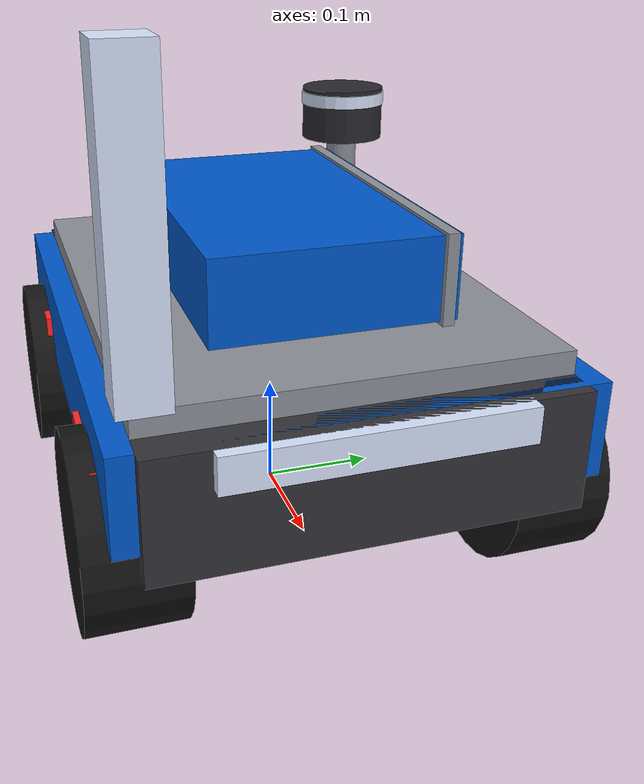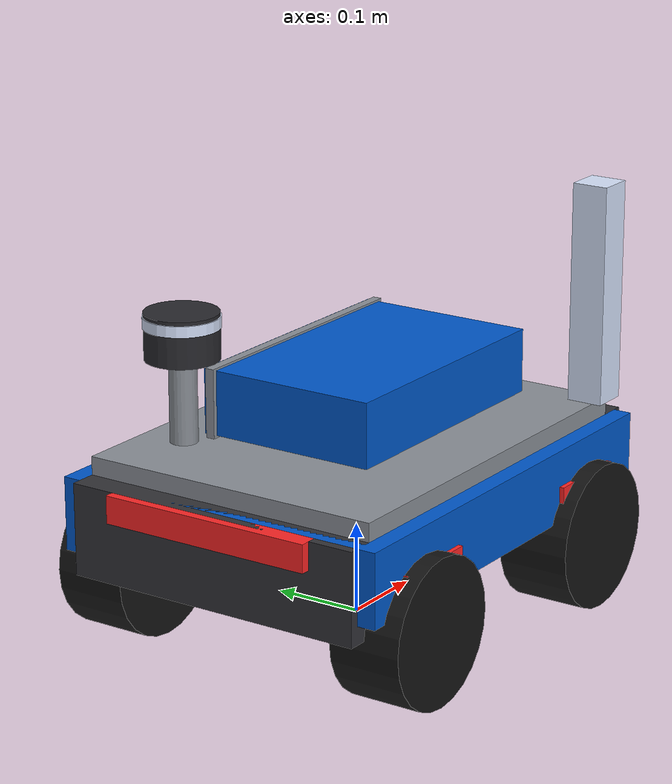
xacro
<?xml version="1.0"?>
<robot name="agv0" xmlns:xacro="http://ros.org/wiki/xacro">

    <!-- 1. 使用相对路径引入 -->
    <xacro:include filename="agv_core.urdf.xacro"/>

    <!-- 2. 定义默认参数 -->
    <xacro:arg name="robot_name" default="agv0"/>
    <xacro:arg name="color" default="0 0.35 0.8 1.0"/>
    <xacro:arg name="id" default="0"/>
    <xacro:arg name="with_cargo" default="true"/>
    <xacro:arg name="gazebo_mat" default="Gazebo/Blue"/>

    <!-- 3. 调用宏，并显式把参数传进去 -->
    <xacro:agv_core
        robot_name="$(arg robot_name)"
        color="$(arg color)"
        id="$(arg id)"
        with_cargo="$(arg with_cargo)"
        gazebo_mat="$(arg gazebo_mat)"/>

</robot>

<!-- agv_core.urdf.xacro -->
<robot xmlns:xacro="http://ros.org/wiki/xacro" name="agv_core">

  <xacro:macro name="agv_core" params="robot_name color id with_cargo:=true gazebo_mat:=Gazebo/Blue">

    <!-- ================= 材质宏（内联到每个 visual） ================= -->
    <xacro:macro name="body_mat" params="robot_name robot_color">
      <material name="${robot_name}_body">
        <color rgba="${robot_color}"/>
      </material>
    </xacro:macro>
    <xacro:macro name="wheel_mat_block">
      <material name="wheel_mat">
        <color rgba="0.08 0.08 0.08 1.0"/>
      </material>
    </xacro:macro>
    <xacro:macro name="platform_mat_block">
      <material name="platform_mat">
        <color rgba="0.55 0.57 0.6 1.0"/>
      </material>
    </xacro:macro>
    <xacro:macro name="lidar_mat_block">
      <material name="lidar_mat">
        <color rgba="0.16 0.16 0.18 1.0"/>
      </material>
    </xacro:macro>
    <xacro:macro name="led_front_mat_block">
      <material name="led_front_mat">
        <color rgba="0.85 0.9 1.0 1.0"/>
      </material>
    </xacro:macro>
    <xacro:macro name="led_rear_mat_block">
      <material name="led_rear_mat">
        <color rgba="1.0 0.15 0.15 1.0"/>
      </material>
    </xacro:macro>
    <xacro:macro name="bumper_mat_block">
      <material name="bumper_mat">
        <color rgba="0.2 0.2 0.22 1.0"/>
      </material>
    </xacro:macro>

    <!-- ================= 底盘（车体） ================= -->
    <link name="base_link_${id}">
      <!-- 车体主体 -->
      <visual>
        <geometry><box size="0.5 0.38 0.08"/></geometry>
        <origin xyz="0 0 0.15"/>
        <xacro:body_mat robot_name="${robot_name}" robot_color="${color}"/>
      </visual>
      <!-- 前保险杠 -->
      <visual>
        <geometry><box size="0.04 0.34 0.1"/></geometry>
        <origin xyz="0.24 0 0.14"/>
        <xacro:bumper_mat_block/>
      </visual>
      <!-- 后保险杠 -->
      <visual>
        <geometry><box size="0.04 0.34 0.1"/></geometry>
        <origin xyz="-0.24 0 0.14"/>
        <xacro:bumper_mat_block/>
      </visual>
      <!-- 前方白色状态灯 -->
      <visual>
        <geometry><box size="0.02 0.24 0.03"/></geometry>
        <origin xyz="0.26 0 0.175"/>
        <xacro:led_front_mat_block/>
      </visual>
      <!-- 后方红色警示灯 -->
      <visual>
        <geometry><box size="0.02 0.24 0.03"/></geometry>
        <origin xyz="-0.26 0 0.175"/>
        <xacro:led_rear_mat_block/>
      </visual>
      <!-- 两侧黄色反光条 -->
      <visual>
        <geometry><box size="0.1 0.01 0.04"/></geometry>
        <origin xyz="0.15 0.19 0.13"/>
        <xacro:led_rear_mat_block/>
      </visual>
      <visual>
        <geometry><box size="0.1 0.01 0.04"/></geometry>
        <origin xyz="-0.15 0.19 0.13"/>
        <xacro:led_rear_mat_block/>
      </visual>
      <visual>
        <geometry><box size="0.1 0.01 0.04"/></geometry>
        <origin xyz="0.15 -0.19 0.13"/>
        <xacro:led_rear_mat_block/>
      </visual>
      <visual>
        <geometry><box size="0.1 0.01 0.04"/></geometry>
        <origin xyz="-0.15 -0.19 0.13"/>
        <xacro:led_rear_mat_block/>
      </visual>
      <!-- 底盘碰撞体 + 惯量：2026-09 修复。此前一次“注释立杆”误把车体的
           collision/inertial 一并注释掉，导致底盘无碰撞体积（车可互相穿模）、
           base_link 无惯性（URDF 解析报错风险），此处恢复。 -->
      <collision>
        <geometry><box size="0.5 0.38 0.08"/></geometry>
        <origin xyz="0 0 0.15"/>
      </collision>
      <inertial>
        <mass value="20.0"/>
        <inertia ixx="0.2513" ixy="0.0" ixz="0.0" iyy="0.4273" iyz="0.0" izz="0.6573"/>
      </inertial>

    </link>

    <link name="front_left_steer_link_${id}">
      <inertial>
        <mass value="0.5"/>
        <inertia ixx="0.01" ixy="0.0" ixz="0.0" iyy="0.01" iyz="0.0" izz="0.01"/>
      </inertial>
    </link>
    <joint name="front_left_steer_joint_${id}" type="revolute">
      <parent link="base_link_${id}"/><child link="front_left_steer_link_${id}"/>
      <origin xyz="0.16 0.17 0.08"/>
      <axis xyz="0 0 1"/>
      <limit lower="-0.7" upper="0.7" effort="100" velocity="10"/>
    </joint>
    <link name="left_wheel_front_${id}">
      <visual>
        <origin xyz="0.0 0.0 0.0" rpy="0 1.57 1.57"/>
        <geometry><cylinder radius="0.08" length="0.08"/></geometry>
        <xacro:wheel_mat_block/>
      </visual>
      <collision>
        <origin xyz="0.0 0.0 0.0" rpy="0 1.57 1.57"/>
        <geometry><cylinder radius="0.08" length="0.08"/></geometry>
      </collision>
      <inertial>
        <mass value="0.8"/>
        <inertia ixx="0.00200" ixy="0.0" ixz="0.0" iyy="0.00200" iyz="0.0" izz="0.00320"/>
      </inertial>
    </link>
    <joint name="left_wheel_front_joint_${id}" type="continuous">
      <parent link="front_left_steer_link_${id}"/><child link="left_wheel_front_${id}"/>
      <origin xyz="0 0 0"/>
      <axis xyz="0 1 0"/>
      <dynamics damping="0.01"/>
      <limit effort="100" velocity="20"/>
    </joint>

    <link name="front_right_steer_link_${id}">
      <inertial>
        <mass value="0.5"/>
        <inertia ixx="0.01" ixy="0.0" ixz="0.0" iyy="0.01" iyz="0.0" izz="0.01"/>
      </inertial>
    </link>
    <joint name="front_right_steer_joint_${id}" type="revolute">
      <parent link="base_link_${id}"/><child link="front_right_steer_link_${id}"/>
      <origin xyz="0.16 -0.17 0.08"/>
      <axis xyz="0 0 1"/>
      <limit lower="-0.7" upper="0.7" effort="100" velocity="10"/>
    </joint>
    <link name="right_wheel_front_${id}">
      <visual>
        <origin xyz="0.0 0.0 0.0" rpy="0 1.57 1.57"/>
        <geometry><cylinder radius="0.08" length="0.08"/></geometry>
        <xacro:wheel_mat_block/>
      </visual>
      <collision>
        <origin xyz="0.0 0.0 0.0" rpy="0 1.57 1.57"/>
        <geometry><cylinder radius="0.08" length="0.08"/></geometry>
      </collision>
      <inertial>
        <mass value="0.8"/>
        <inertia ixx="0.00200" ixy="0.0" ixz="0.0" iyy="0.00200" iyz="0.0" izz="0.00320"/>
      </inertial>
    </link>
    <joint name="right_wheel_front_joint_${id}" type="continuous">
      <parent link="front_right_steer_link_${id}"/><child link="right_wheel_front_${id}"/>
      <origin xyz="0 0 0"/>
      <axis xyz="0 1 0"/>
      <dynamics damping="0.01"/>
      <limit effort="100" velocity="20"/>
    </joint>

    <link name="left_wheel_rear_${id}">
      <visual>
        <origin xyz="0.0 0.0 0.0" rpy="0 1.57 1.57"/>
        <geometry><cylinder radius="0.08" length="0.08"/></geometry>
        <xacro:wheel_mat_block/>
      </visual>
      <collision>
        <origin xyz="0.0 0.0 0.0" rpy="0 1.57 1.57"/>
        <geometry><cylinder radius="0.08" length="0.08"/></geometry>
      </collision>
      <inertial>
        <mass value="0.8"/>
        <inertia ixx="0.00200" ixy="0.0" ixz="0.0" iyy="0.00200" iyz="0.0" izz="0.00320"/>
      </inertial>
    </link>
    <joint name="left_wheel_rear_joint_${id}" type="continuous">
      <parent link="base_link_${id}"/><child link="left_wheel_rear_${id}"/>
      <origin xyz="-0.16 0.17 0.08"/>
      <axis xyz="0 1 0"/>
      <dynamics damping="0.01"/>
      <limit effort="100" velocity="20"/>
    </joint>

    <link name="right_wheel_rear_${id}">
      <visual>
        <origin xyz="0.0 0.0 0.0" rpy="0 1.57 1.57"/>
        <geometry><cylinder radius="0.08" length="0.08"/></geometry>
        <xacro:wheel_mat_block/>
      </visual>
      <collision>
        <origin xyz="0.0 0.0 0.0" rpy="0 1.57 1.57"/>
        <geometry><cylinder radius="0.08" length="0.08"/></geometry>
      </collision>
      <inertial>
        <mass value="0.8"/>
        <inertia ixx="0.00200" ixy="0.0" ixz="0.0" iyy="0.00200" iyz="0.0" izz="0.00320"/>
      </inertial>
    </link>
    <joint name="right_wheel_rear_joint_${id}" type="continuous">
      <parent link="base_link_${id}"/><child link="right_wheel_rear_${id}"/>
      <origin xyz="-0.16 -0.17 0.08"/>
      <axis xyz="0 1 0"/>
      <dynamics damping="0.01"/>
      <limit effort="100" velocity="20"/>
    </joint>

    <link name="top_platform_${id}">
      <visual>
        <geometry><box size="0.46 0.34 0.02"/></geometry>
        <origin xyz="0 0 0"/>
        <xacro:platform_mat_block/>
      </visual>
      <collision>
        <geometry><box size="0.46 0.34 0.02"/></geometry>
        <origin xyz="0 0 0"/>
      </collision>
      <inertial>
        <mass value="1.5"/>
        <inertia ixx="0.0145" ixy="0.0" ixz="0.0" iyy="0.0265" iyz="0.0" izz="0.0409"/>
      </inertial>
    </link>
    <joint name="top_platform_joint_${id}" type="fixed">
      <parent link="base_link_${id}"/><child link="top_platform_${id}"/>
      <origin xyz="0 0 0.20"/>
    </joint>

    <link name="lidar_link_${id}">
      <!-- 各几何 origin 均相对本 link 原点（= 雷达主机中心），
           link 相对 base 的偏移写在 lidar_joint origin（见下注释）。 -->
      <!-- 安装柱 -->
      <visual>
        <geometry><cylinder radius="0.015" length="0.1"/></geometry>
        <origin xyz="0 0 -0.065"/>
        <xacro:platform_mat_block/>
      </visual>
      <!-- 雷达主体 -->
      <visual>
        <geometry><cylinder radius="0.04" length="0.05"/></geometry>
        <origin xyz="0 0 0"/>
        <xacro:lidar_mat_block/>
      </visual>
      <!-- 雷达顶部反光环 -->
      <visual>
        <geometry><cylinder radius="0.041" length="0.012"/></geometry>
        <origin xyz="0 0 0.015"/>
        <xacro:led_front_mat_block/>
      </visual>
      <!-- 无 collision：雷达主机装饰碰撞若保留，会与 laser 原点（= link 原点，
           折叠后=joint origin）同心，ray 从自身碰撞体内部发出造成自命中近距假点。 -->
      <inertial>
        <mass value="0.15"/>
        <inertia ixx="0.0001" ixy="0.0" ixz="0.0" iyy="0.0001" iyz="0.0" izz="0.0001"/>
      </inertial>
    </link>
    <joint name="lidar_joint_${id}" type="fixed">
      <parent link="base_link_${id}"/><child link="lidar_link_${id}"/>
      <!-- 激光原点相对 base：(-0.14, 0.12, 0.325)。必须写在 joint origin，
           否则 fixed 零位姿子 link 会被 libsdformat 折叠、sensor pose 丢失。 -->
      <origin xyz="-0.14 0.12 0.325"/>
    </joint>

    <link name="beacon_${id}">
      <visual>
        <geometry><box size="0.04 0.04 0.24"/></geometry>
        <origin xyz="0 0 0"/>
        <xacro:led_front_mat_block/>
      </visual>
      <!-- 必须有 collision：Gazebo 射线传感器只与 **collision** 几何求交，
           纯 visual 的立柱在雷达里是"透明"的，加了等于没加。 -->
      <collision>
        <geometry><box size="0.04 0.04 0.24"/></geometry>
        <origin xyz="0 0 0"/>
      </collision>
      <inertial>
        <mass value="0.05"/>
        <inertia ixx="0.000247" ixy="0.0" ixz="0.0" iyy="0.000247" iyz="0.0" izz="0.0000133"/>
      </inertial>
    </link>
    <joint name="beacon_joint_${id}" type="fixed">
      <parent link="base_link_${id}"/><child link="beacon_${id}"/>
      <!-- 车头右前角（雷达在车尾左后角 → 取对角最远，满足约束 1）；
           柱心 z=0.33 → 柱体跨 0.21~0.45，把 0.325 扫描平面夹在中间。 -->
      <origin xyz="0.22 -0.16 0.33"/>
    </joint>

    <!-- ================= 货物（可选，模拟载货状态） ================= -->
    <xacro:if value="${with_cargo}">
      <link name="cargo_${id}">
        <!-- 几何 origin 相对本 link（原点=货箱中心 0.02,0,0.255），
             偏移写在 cargo_joint origin（防止 fixed 零位姿子 link 被折叠）。 -->
        <visual>
          <geometry><box size="0.3 0.2 0.07"/></geometry>
          <origin xyz="0 0 0"/>
          <xacro:body_mat robot_name="${robot_name}" robot_color="${color}"/>
        </visual>
        <!-- 货物封条线 -->
        <visual>
          <geometry><box size="0.31 0.01 0.075"/></geometry>
          <origin xyz="0 0.09 0"/>
          <xacro:platform_mat_block/>
        </visual>
        <collision>
          <geometry><box size="0.3 0.2 0.07"/></geometry>
          <origin xyz="0 0 0"/>
        </collision>
        <inertial>
          <mass value="2.0"/>
          <inertia ixx="0.0104" ixy="0.0" ixz="0.0" iyy="0.0188" iyz="0.0" izz="0.0217"/>
        </inertial>
      </link>
      <joint name="cargo_joint_${id}" type="fixed">
        <parent link="base_link_${id}"/><child link="cargo_${id}"/>
        <origin xyz="0.02 0 0.255"/>
      </joint>
    </xacro:if>

    <gazebo>
      <plugin name="ackermann_drive_${id}" filename="libgazebo_ros_ackermann_drive.so">
        <ros><namespace>/agv_${id}</namespace></ros>
        <update_rate>50</update_rate>
        <!-- 四轮驱动关节（绕 Y） -->
        <front_left_joint>left_wheel_front_joint_${id}</front_left_joint>
        <front_right_joint>right_wheel_front_joint_${id}</front_right_joint>
        <rear_left_joint>left_wheel_rear_joint_${id}</rear_left_joint>
        <rear_right_joint>right_wheel_rear_joint_${id}</rear_right_joint>
        <!-- 前轮转向关节（绕 Z） -->
        <left_steering_joint>front_left_steer_joint_${id}</left_steering_joint>
        <right_steering_joint>front_right_steer_joint_${id}</right_steering_joint>
        <!-- 轮胎最大转向角(rad) -->
        <max_steer>0.6</max_steer>
        <!-- 转向关节最大角度(rad)：无转向盘，与 max_steer 一致 -->
        <max_steering_angle>0.6</max_steering_angle>
        <max_speed>1.0</max_speed>
        <!-- PID（三值 = P I D）：steering 加小积分消除稳态误差，i_range 限幅防跑偏 -->
        <linear_velocity_pid_gain>3 0 0</linear_velocity_pid_gain>
        <linear_velocity_i_range>0 0</linear_velocity_i_range>
        <left_steering_pid_gain>20 0.3 0</left_steering_pid_gain>
        <left_steering_i_range>0.3 0.3</left_steering_i_range>
        <right_steering_pid_gain>20 0.3 0</right_steering_pid_gain>
        <right_steering_i_range>0.3 0.3</right_steering_i_range>
        <!-- 里程计发布 -->
        <publish_odom>true</publish_odom>
        <publish_odom_tf>true</publish_odom_tf>
        <odometry_frame>odom_${id}</odometry_frame>
        <robot_base_frame>base_link_${id}</robot_base_frame>
        <publish_wheel_tf>false</publish_wheel_tf>
      </plugin>
    </gazebo>

    <!-- ================= Gazebo 激光雷达传感器 ================= -->
    <gazebo reference="lidar_link_${id}">
      <sensor type="ray" name="lidar_sensor_${id}">
        <!-- pose 相对 lidar_link：link 原点已在 lidar_joint 移到雷达主机位置，
             故 sensor 直接放 link 原点（0 0 0）。若在此保留旧的 -0.14 0.12 0.325
             会与 joint origin 叠加造成双倍偏移。 -->
        <pose>0 0 0 0 0 0</pose>
        <update_rate>10</update_rate>
        <ray>
          <scan>
            <horizontal>
              <samples>360</samples>
              <resolution>1</resolution>
              <min_angle>-3.14159265</min_angle>
              <max_angle>3.14159265</max_angle>
            </horizontal>
          </scan>
          <range>
            <min>0.1</min>
            <max>12.0</max>
            <resolution>0.01</resolution>
          </range>
        </ray>
        <plugin name="lidar_plugin_${id}" filename="libgazebo_ros_ray_sensor.so">
          <ros>
            <namespace>/agv_${id}</namespace>
            <remapping>~/out:=scan</remapping>
          </ros>
          <output_type>sensor_msgs/LaserScan</output_type>
          <frame_name>lidar_link_${id}</frame_name>
        </plugin>
      </sensor>
    </gazebo>

    <gazebo reference="base_link_${id}">
      <material>${gazebo_mat}</material>
    </gazebo>
    <gazebo reference="left_wheel_front_${id}">
      <material>Gazebo/Black</material>
      <!-- 2026-09-23：注释声称“滚动方向为 +x（fdir1）”，但代码里一直没有这一行
           => mu1/mu2 实际作用在**默认轴**上，不是轮子的滚动/侧向方向 =>
           摩擦参数名存实亡。这里补上。 -->
      <fdir1>1 0 0</fdir1>
      <mu1>1.2</mu1>
      <mu2>1.2</mu2>
    </gazebo>
    <gazebo reference="right_wheel_front_${id}">
      <material>Gazebo/Black</material>
      <!-- 2026-09-23：注释声称“滚动方向为 +x（fdir1）”，但代码里一直没有这一行
           => mu1/mu2 实际作用在**默认轴**上，不是轮子的滚动/侧向方向 =>
           摩擦参数名存实亡。这里补上。 -->
      <fdir1>1 0 0</fdir1>
      <mu1>1.2</mu1>
      <mu2>1.2</mu2>
    </gazebo>
    <gazebo reference="left_wheel_rear_${id}">
      <material>Gazebo/Black</material>
      <!-- 2026-09-23：注释声称“滚动方向为 +x（fdir1）”，但代码里一直没有这一行
           => mu1/mu2 实际作用在**默认轴**上，不是轮子的滚动/侧向方向 =>
           摩擦参数名存实亡。这里补上。 -->
      <fdir1>1 0 0</fdir1>
      <mu1>1.2</mu1>
      <mu2>1.2</mu2>
    </gazebo>
    <gazebo reference="right_wheel_rear_${id}">
      <material>Gazebo/Black</material>
      <!-- 2026-09-23：注释声称“滚动方向为 +x（fdir1）”，但代码里一直没有这一行
           => mu1/mu2 实际作用在**默认轴**上，不是轮子的滚动/侧向方向 =>
           摩擦参数名存实亡。这里补上。 -->
      <fdir1>1 0 0</fdir1>
      <mu1>1.2</mu1>
      <mu2>1.2</mu2>
    </gazebo>
    <gazebo reference="top_platform_${id}">
      <material>Gazebo/Grey</material>
    </gazebo>
    <gazebo reference="lidar_link_${id}">
      <material>Gazebo/Black</material>
    </gazebo>
    <xacro:if value="${with_cargo}">
      <gazebo reference="cargo_${id}">
        <material>${gazebo_mat}</material>
      </gazebo>
    </xacro:if>

  </xacro:macro>
</robot>
